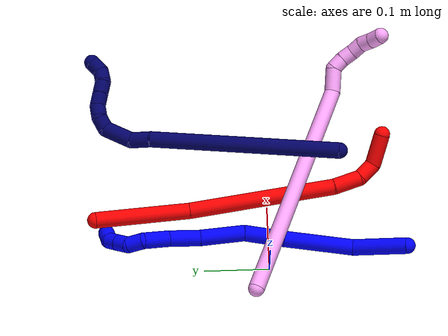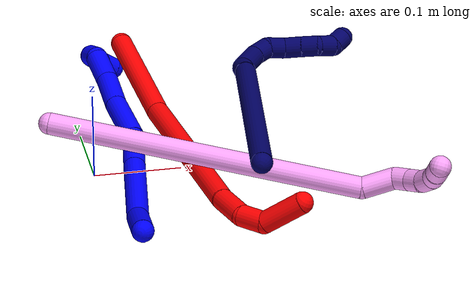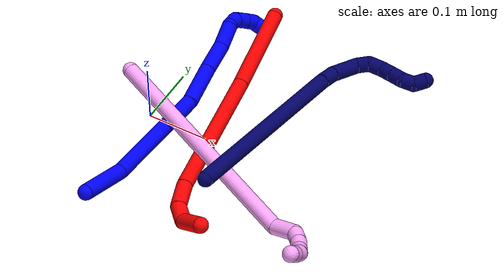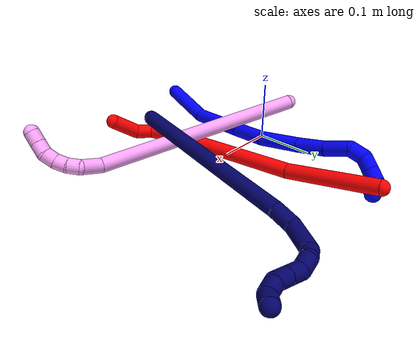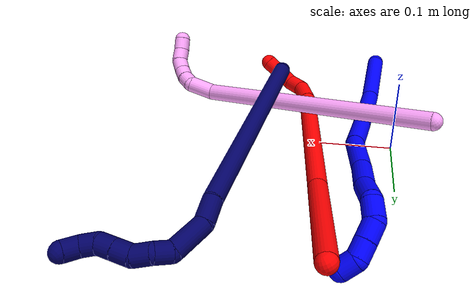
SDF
<sdf version="1.7">
 <world name="default">
  <model name="photoneo_s_sensor">
   <static>1</static>
   <pose>0 0 2 1.57079 1.57079 3.14159</pose>
   <link name="link">
    <inertial><mass>0.1</mass></inertial>
    <sensor name="sensor" type="depth">
     <update_rate>30</update_rate>
     <camera>
      <horizontal_fov>1.22</horizontal_fov>
      <image><width>1920</width><height>1200</height><format>B8G8R8</format></image>
      <clip><near>0.1</near><far>4</far></clip>
      <depth_camera><output>points</output></depth_camera>
     </camera>
     <plugin name="camera_plugin" filename="libgazebo_ros_depth_camera.so">
      <baseline>0.2</baseline>
      <alwaysOn>1</alwaysOn>
      <updateRate>0.0</updateRate>
      <cameraName>camera_ir</cameraName>
      <imageTopicName>/camera/color/image_raw</imageTopicName>
      <cameraInfoTopicName>/camera/color/camera_info</cameraInfoTopicName>
      <depthImageTopicName>/camera/depth/image_raw</depthImageTopicName>
      <depthImageCameraInfoTopicName>/camera/depth/camera_info</depthImageCameraInfoTopicName>
      <pointCloudTopicName>/camera/depth/points</pointCloudTopicName>
      <frameName>fr_optical</frameName>
      <pointCloudCutoff>0.1</pointCloudCutoff>
      <pointCloudCutoffMax>2.0</pointCloudCutoffMax>
      <distortionK1>0</distortionK1>
      <distortionK2>0</distortionK2>
      <distortionK3>0</distortionK3>
      <distortionT1>0</distortionT1>
      <distortionT2>0</distortionT2>
      <CxPrime>0</CxPrime>
      <Cx>0</Cx>
      <Cy>0</Cy>
      <focalLength>0</focalLength>
      <hackBaseline>0</hackBaseline>
     </plugin>
    </sensor>
   </link>
  </model>
  <model name="bin">
   <static>1</static>
   <link name="bottom">
    <collision name="collision-bottom">
     <pose>0 0 -0.01 0 -0 0</pose>
     <geometry><box><size>0.8 0.6 0.02</size></box></geometry>
     <surface>
      <friction><ode><mu>100</mu><mu2>100</mu2></ode></friction>
      <contact><collide_bitmask>65535</collide_bitmask></contact>
     </surface>
    </collision>
   </link>
   <link name="west_wall">
    <collision name="collision-west_wall">
     <pose>-0.41 0 0.1 0 -0 0</pose>
     <geometry><box><size>0.02 0.6 0.2</size></box></geometry>
     <surface>
      <friction><ode><mu>100</mu><mu2>100</mu2></ode></friction>
      <contact><collide_bitmask>65535</collide_bitmask></contact>
     </surface>
    </collision>
   </link>
   <link name="east_wall">
    <collision name="collision-east_wall">
     <pose>0.41 0 0.1 0 -0 0</pose>
     <geometry><box><size>0.02 0.6 0.2</size></box></geometry>
     <surface>
      <friction><ode><mu>100</mu><mu2>100</mu2></ode></friction>
      <contact><collide_bitmask>65535</collide_bitmask></contact>
     </surface>
    </collision>
   </link>
   <link name="south_wall">
    <collision name="collision-south_wall">
     <pose>0 -0.31 0.1 0 -0 0</pose>
     <geometry><box><size>0.8 0.02 0.2</size></box></geometry>
     <surface>
      <friction><ode><mu>100</mu><mu2>100</mu2></ode></friction>
      <contact><collide_bitmask>65535</collide_bitmask></contact>
     </surface>
    </collision>
   </link>
   <link name="north_wall">
    <collision name="collision-north_wall">
     <pose>0 0.31 0.1 0 -0 0</pose>
     <geometry><box><size>0.8 0.02 0.2</size></box></geometry>
     <surface>
      <friction><ode><mu>100</mu><mu2>100</mu2></ode></friction>
      <contact><collide_bitmask>65535</collide_bitmask></contact>
     </surface>
    </collision>
   </link>
  </model>
  <model name="1">
   <static>0</static>
   <link name="1">
    <collision name="collision-cylinder-e_1_1_4">
     <pose>0.015067 0.008634 0.039076 -0.217461 0.360082 -0.039732</pose>
     <geometry><cylinder><radius>0.0125</radius><length>0.085523</length></cylinder></geometry>
     <surface>
      <friction><ode><mu>1.16</mu><mu2>1.16</mu2><slip1>0</slip1><slip2>0</slip2></ode></friction>
      <contact><ode><kp>1e+06</kp><kd>1</kd><max_vel>0</max_vel><min_depth>0.001</min_depth></ode></contact>
     </surface>
    </collision>
    <visual name="visual-cylinder-e_1_1_4">
     <pose>0.015067 0.008634 0.039076 -0.217461 0.360082 -0.039732</pose>
     <geometry><cylinder><radius>0.0125</radius><length>0.085523</length></cylinder></geometry>
     <material><ambient>0 0 1 1</ambient></material>
    </visual>
    <collision name="collision-cylinder-e_2_4_5">
     <pose>0.031209 0.039904 0.126933 -0.434463 0.01999 -0.004412</pose>
     <geometry><cylinder><radius>0.0125</radius><length>0.107573</length></cylinder></geometry>
     <surface>
      <friction><ode><mu>1.16</mu><mu2>1.16</mu2><slip1>0</slip1><slip2>0</slip2></ode></friction>
      <contact><ode><kp>1e+06</kp><kd>1</kd><max_vel>0</max_vel><min_depth>0.001</min_depth></ode></contact>
     </surface>
    </collision>
    <visual name="visual-cylinder-e_2_4_5">
     <pose>0.031209 0.039904 0.126933 -0.434463 0.01999 -0.004412</pose>
     <geometry><cylinder><radius>0.0125</radius><length>0.107573</length></cylinder></geometry>
     <material><ambient>0 0 1 1</ambient></material>
    </visual>
    <collision name="collision-cylinder-e_3_5_6">
     <pose>0.031936 0.075749 0.203781 -0.439862 -0.011226 0.00251</pose>
     <geometry><cylinder><radius>0.0125</radius><length>0.062047</length></cylinder></geometry>
     <surface>
      <friction><ode><mu>1.16</mu><mu2>1.16</mu2><slip1>0</slip1><slip2>0</slip2></ode></friction>
      <contact><ode><kp>1e+06</kp><kd>1</kd><max_vel>0</max_vel><min_depth>0.001</min_depth></ode></contact>
     </surface>
    </collision>
    <visual name="visual-cylinder-e_3_5_6">
     <pose>0.031936 0.075749 0.203781 -0.439862 -0.011226 0.00251</pose>
     <geometry><cylinder><radius>0.0125</radius><length>0.062047</length></cylinder></geometry>
     <material><ambient>0 0 1 1</ambient></material>
    </visual>
    <collision name="collision-cylinder-e_4_6_7">
     <pose>0.036293 0.110125 0.258727 -0.667091 0.136685 -0.047425</pose>
     <geometry><cylinder><radius>0.0125</radius><length>0.069066</length></cylinder></geometry>
     <surface>
      <friction><ode><mu>1.16</mu><mu2>1.16</mu2><slip1>0</slip1><slip2>0</slip2></ode></friction>
      <contact><ode><kp>1e+06</kp><kd>1</kd><max_vel>0</max_vel><min_depth>0.001</min_depth></ode></contact>
     </surface>
    </collision>
    <visual name="visual-cylinder-e_4_6_7">
     <pose>0.036293 0.110125 0.258727 -0.667091 0.136685 -0.047425</pose>
     <geometry><cylinder><radius>0.0125</radius><length>0.069066</length></cylinder></geometry>
     <material><ambient>0 0 1 1</ambient></material>
    </visual>
    <collision name="collision-cylinder-e_5_7_8">
     <pose>0.041806 0.145925 0.30478 -0.651869 0.033441 -0.011304</pose>
     <geometry><cylinder><radius>0.0125</radius><length>0.048271</length></cylinder></geometry>
     <surface>
      <friction><ode><mu>1.16</mu><mu2>1.16</mu2><slip1>0</slip1><slip2>0</slip2></ode></friction>
      <contact><ode><kp>1e+06</kp><kd>1</kd><max_vel>0</max_vel><min_depth>0.001</min_depth></ode></contact>
     </surface>
    </collision>
    <visual name="visual-cylinder-e_5_7_8">
     <pose>0.041806 0.145925 0.30478 -0.651869 0.033441 -0.011304</pose>
     <geometry><cylinder><radius>0.0125</radius><length>0.048271</length></cylinder></geometry>
     <material><ambient>0 0 1 1</ambient></material>
    </visual>
    <collision name="collision-cylinder-e_6_8_9">
     <pose>0.042638 0.174915 0.338025 -0.795486 0.001258 -0.000529</pose>
     <geometry><cylinder><radius>0.0125</radius><length>0.040201</length></cylinder></geometry>
     <surface>
      <friction><ode><mu>1.16</mu><mu2>1.16</mu2><slip1>0</slip1><slip2>0</slip2></ode></friction>
      <contact><ode><kp>1e+06</kp><kd>1</kd><max_vel>0</max_vel><min_depth>0.001</min_depth></ode></contact>
     </surface>
    </collision>
    <visual name="visual-cylinder-e_6_8_9">
     <pose>0.042638 0.174915 0.338025 -0.795486 0.001258 -0.000529</pose>
     <geometry><cylinder><radius>0.0125</radius><length>0.040201</length></cylinder></geometry>
     <material><ambient>0 0 1 1</ambient></material>
    </visual>
    <collision name="collision-cylinder-e_7_9_10">
     <pose>0.048729 0.193509 0.362 -0.404274 0.512714 -0.107334</pose>
     <geometry><cylinder><radius>0.0125</radius><length>0.02473</length></cylinder></geometry>
     <surface>
      <friction><ode><mu>1.16</mu><mu2>1.16</mu2><slip1>0</slip1><slip2>0</slip2></ode></friction>
      <contact><ode><kp>1e+06</kp><kd>1</kd><max_vel>0</max_vel><min_depth>0.001</min_depth></ode></contact>
     </surface>
    </collision>
    <visual name="visual-cylinder-e_7_9_10">
     <pose>0.048729 0.193509 0.362 -0.404274 0.512714 -0.107334</pose>
     <geometry><cylinder><radius>0.0125</radius><length>0.02473</length></cylinder></geometry>
     <material><ambient>0 0 1 1</ambient></material>
    </visual>
    <collision name="collision-cylinder-e_8_10_11">
     <pose>0.058828 0.195399 0.381961 0.229504 0.372406 0.043419</pose>
     <geometry><cylinder><radius>0.0125</radius><length>0.02217</length></cylinder></geometry>
     <surface>
      <friction><ode><mu>1.16</mu><mu2>1.16</mu2><slip1>0</slip1><slip2>0</slip2></ode></friction>
      <contact><ode><kp>1e+06</kp><kd>1</kd><max_vel>0</max_vel><min_depth>0.001</min_depth></ode></contact>
     </surface>
    </collision>
    <visual name="visual-cylinder-e_8_10_11">
     <pose>0.058828 0.195399 0.381961 0.229504 0.372406 0.043419</pose>
     <geometry><cylinder><radius>0.0125</radius><length>0.02217</length></cylinder></geometry>
     <material><ambient>0 0 1 1</ambient></material>
    </visual>
    <collision name="collision-cylinder-e_9_11_12">
     <pose>0.066553 0.190649 0.401105 0.258285 0.374198 0.04916</pose>
     <geometry><cylinder><radius>0.0125</radius><length>0.0202</length></cylinder></geometry>
     <surface>
      <friction><ode><mu>1.16</mu><mu2>1.16</mu2><slip1>0</slip1><slip2>0</slip2></ode></friction>
      <contact><ode><kp>1e+06</kp><kd>1</kd><max_vel>0</max_vel><min_depth>0.001</min_depth></ode></contact>
     </surface>
    </collision>
    <visual name="visual-cylinder-e_9_11_12">
     <pose>0.066553 0.190649 0.401105 0.258285 0.374198 0.04916</pose>
     <geometry><cylinder><radius>0.0125</radius><length>0.0202</length></cylinder></geometry>
     <material><ambient>0 0 1 1</ambient></material>
    </visual>
    <collision name="collision-cylinder-e_10_12_2">
     <pose>0.070958 0.1807 0.416882 0.845675 0.070661 0.031807</pose>
     <geometry><cylinder><radius>0.0125</radius><length>0.020219</length></cylinder></geometry>
     <surface>
      <friction><ode><mu>1.16</mu><mu2>1.16</mu2><slip1>0</slip1><slip2>0</slip2></ode></friction>
      <contact><ode><kp>1e+06</kp><kd>1</kd><max_vel>0</max_vel><min_depth>0.001</min_depth></ode></contact>
     </surface>
    </collision>
    <visual name="visual-cylinder-e_10_12_2">
     <pose>0.070958 0.1807 0.416882 0.845675 0.070661 0.031807</pose>
     <geometry><cylinder><radius>0.0125</radius><length>0.020219</length></cylinder></geometry>
     <material><ambient>0 0 1 1</ambient></material>
    </visual>
    <collision name="collision-sphere-2">
     <pose>0.071672 0.173153 0.42357 0 -0 0</pose>
     <geometry><sphere><radius>0.0125</radius></sphere></geometry>
     <surface>
      <friction><ode><mu>1.16</mu><mu2>1.16</mu2><slip1>0</slip1><slip2>0</slip2></ode></friction>
      <contact><ode><kp>1e+06</kp><kd>1</kd><max_vel>0</max_vel><min_depth>0.001</min_depth></ode></contact>
     </surface>
    </collision>
    <visual name="visual-sphere-2">
     <pose>0.071672 0.173153 0.42357 0 -0 0</pose>
     <geometry><sphere><radius>0.0125</radius></sphere></geometry>
     <material><ambient>0 0 1 1</ambient></material>
    </visual>
    <collision name="collision-sphere-12">
     <pose>0.070245 0.188247 0.410194 0 -0 0</pose>
     <geometry><sphere><radius>0.0125</radius></sphere></geometry>
     <surface>
      <friction><ode><mu>1.16</mu><mu2>1.16</mu2><slip1>0</slip1><slip2>0</slip2></ode></friction>
      <contact><ode><kp>1e+06</kp><kd>1</kd><max_vel>0</max_vel><min_depth>0.001</min_depth></ode></contact>
     </surface>
    </collision>
    <visual name="visual-sphere-12">
     <pose>0.070245 0.188247 0.410194 0 -0 0</pose>
     <geometry><sphere><radius>0.0125</radius></sphere></geometry>
     <material><ambient>0 0 1 1</ambient></material>
    </visual>
    <collision name="collision-sphere-11">
     <pose>0.062861 0.19305 0.392016 0 -0 0</pose>
     <geometry><sphere><radius>0.0125</radius></sphere></geometry>
     <surface>
      <friction><ode><mu>1.16</mu><mu2>1.16</mu2><slip1>0</slip1><slip2>0</slip2></ode></friction>
      <contact><ode><kp>1e+06</kp><kd>1</kd><max_vel>0</max_vel><min_depth>0.001</min_depth></ode></contact>
     </surface>
    </collision>
    <visual name="visual-sphere-11">
     <pose>0.062861 0.19305 0.392016 0 -0 0</pose>
     <geometry><sphere><radius>0.0125</radius></sphere></geometry>
     <material><ambient>0 0 1 1</ambient></material>
    </visual>
    <collision name="collision-sphere-10">
     <pose>0.054794 0.197748 0.371907 0 -0 0</pose>
     <geometry><sphere><radius>0.0125</radius></sphere></geometry>
     <surface>
      <friction><ode><mu>1.16</mu><mu2>1.16</mu2><slip1>0</slip1><slip2>0</slip2></ode></friction>
      <contact><ode><kp>1e+06</kp><kd>1</kd><max_vel>0</max_vel><min_depth>0.001</min_depth></ode></contact>
     </surface>
    </collision>
    <visual name="visual-sphere-10">
     <pose>0.054794 0.197748 0.371907 0 -0 0</pose>
     <geometry><sphere><radius>0.0125</radius></sphere></geometry>
     <material><ambient>0 0 1 1</ambient></material>
    </visual>
    <collision name="collision-sphere-9">
     <pose>0.042663 0.189271 0.352094 0 -0 0</pose>
     <geometry><sphere><radius>0.0125</radius></sphere></geometry>
     <surface>
      <friction><ode><mu>1.16</mu><mu2>1.16</mu2><slip1>0</slip1><slip2>0</slip2></ode></friction>
      <contact><ode><kp>1e+06</kp><kd>1</kd><max_vel>0</max_vel><min_depth>0.001</min_depth></ode></contact>
     </surface>
    </collision>
    <visual name="visual-sphere-9">
     <pose>0.042663 0.189271 0.352094 0 -0 0</pose>
     <geometry><sphere><radius>0.0125</radius></sphere></geometry>
     <material><ambient>0 0 1 1</ambient></material>
    </visual>
    <collision name="collision-sphere-4">
     <pose>0.030134 0.017268 0.078153 0 -0 0</pose>
     <geometry><sphere><radius>0.0125</radius></sphere></geometry>
     <surface>
      <friction><ode><mu>1.16</mu><mu2>1.16</mu2><slip1>0</slip1><slip2>0</slip2></ode></friction>
      <contact><ode><kp>1e+06</kp><kd>1</kd><max_vel>0</max_vel><min_depth>0.001</min_depth></ode></contact>
     </surface>
    </collision>
    <visual name="visual-sphere-4">
     <pose>0.030134 0.017268 0.078153 0 -0 0</pose>
     <geometry><sphere><radius>0.0125</radius></sphere></geometry>
     <material><ambient>0 0 1 1</ambient></material>
    </visual>
    <collision name="collision-sphere-1">
     <geometry><sphere><radius>0.0125</radius></sphere></geometry>
     <surface>
      <friction><ode><mu>1.16</mu><mu2>1.16</mu2><slip1>0</slip1><slip2>0</slip2></ode></friction>
      <contact><ode><kp>1e+06</kp><kd>1</kd><max_vel>0</max_vel><min_depth>0.001</min_depth></ode></contact>
     </surface>
    </collision>
    <visual name="visual-sphere-1">
     <geometry><sphere><radius>0.0125</radius></sphere></geometry>
     <material><ambient>0 0 1 1</ambient></material>
    </visual>
    <collision name="collision-sphere-8">
     <pose>0.042613 0.160559 0.323956 0 -0 0</pose>
     <geometry><sphere><radius>0.0125</radius></sphere></geometry>
     <surface>
      <friction><ode><mu>1.16</mu><mu2>1.16</mu2><slip1>0</slip1><slip2>0</slip2></ode></friction>
      <contact><ode><kp>1e+06</kp><kd>1</kd><max_vel>0</max_vel><min_depth>0.001</min_depth></ode></contact>
     </surface>
    </collision>
    <visual name="visual-sphere-8">
     <pose>0.042613 0.160559 0.323956 0 -0 0</pose>
     <geometry><sphere><radius>0.0125</radius></sphere></geometry>
     <material><ambient>0 0 1 1</ambient></material>
    </visual>
    <collision name="collision-sphere-5">
     <pose>0.032284 0.062539 0.175713 0 -0 0</pose>
     <geometry><sphere><radius>0.0125</radius></sphere></geometry>
     <surface>
      <friction><ode><mu>1.16</mu><mu2>1.16</mu2><slip1>0</slip1><slip2>0</slip2></ode></friction>
      <contact><ode><kp>1e+06</kp><kd>1</kd><max_vel>0</max_vel><min_depth>0.001</min_depth></ode></contact>
     </surface>
    </collision>
    <visual name="visual-sphere-5">
     <pose>0.032284 0.062539 0.175713 0 -0 0</pose>
     <geometry><sphere><radius>0.0125</radius></sphere></geometry>
     <material><ambient>0 0 1 1</ambient></material>
    </visual>
    <collision name="collision-sphere-6">
     <pose>0.031588 0.088958 0.23185 0 -0 0</pose>
     <geometry><sphere><radius>0.0125</radius></sphere></geometry>
     <surface>
      <friction><ode><mu>1.16</mu><mu2>1.16</mu2><slip1>0</slip1><slip2>0</slip2></ode></friction>
      <contact><ode><kp>1e+06</kp><kd>1</kd><max_vel>0</max_vel><min_depth>0.001</min_depth></ode></contact>
     </surface>
    </collision>
    <visual name="visual-sphere-6">
     <pose>0.031588 0.088958 0.23185 0 -0 0</pose>
     <geometry><sphere><radius>0.0125</radius></sphere></geometry>
     <material><ambient>0 0 1 1</ambient></material>
    </visual>
    <collision name="collision-sphere-7">
     <pose>0.040999 0.131291 0.285604 0 -0 0</pose>
     <geometry><sphere><radius>0.0125</radius></sphere></geometry>
     <surface>
      <friction><ode><mu>1.16</mu><mu2>1.16</mu2><slip1>0</slip1><slip2>0</slip2></ode></friction>
      <contact><ode><kp>1e+06</kp><kd>1</kd><max_vel>0</max_vel><min_depth>0.001</min_depth></ode></contact>
     </surface>
    </collision>
    <visual name="visual-sphere-7">
     <pose>0.040999 0.131291 0.285604 0 -0 0</pose>
     <geometry><sphere><radius>0.0125</radius></sphere></geometry>
     <material><ambient>0 0 1 1</ambient></material>
    </visual>
    <inertial>
     <pose>0.036309 0.096069 0.219525 0 -0 0</pose>
     <mass>0.5</mass>
     <inertia>
      <ixx>0.000238</ixx>
      <ixy>0</ixy>
      <ixz>0</ixz>
      <iyy>0.000226</iyy>
      <iyz>0</iyz>
      <izz>-9.1e-05</izz>
     </inertia>
    </inertial>
   </link>
   <pose>0.019928 -0.210885 0.038469 1.84617 0.933383 2.8656</pose>
  </model>
  <model name="2">
   <static>0</static>
   <link name="2">
    <collision name="collision-cylinder-e_1_1_4">
     <pose>0.048579 -0.054043 -0.01039 1.76073 0.72319 0.858748</pose>
     <geometry><cylinder><radius>0.0125</radius><length>0.146814</length></cylinder></geometry>
     <surface>
      <friction><ode><mu>1.16</mu><mu2>1.16</mu2><slip1>0</slip1><slip2>0</slip2></ode></friction>
      <contact><ode><kp>1e+06</kp><kd>1</kd><max_vel>0</max_vel><min_depth>0.001</min_depth></ode></contact>
     </surface>
    </collision>
    <visual name="visual-cylinder-e_1_1_4">
     <pose>0.048579 -0.054043 -0.01039 1.76073 0.72319 0.858748</pose>
     <geometry><cylinder><radius>0.0125</radius><length>0.146814</length></cylinder></geometry>
     <material><ambient>1 0 0 1</ambient></material>
    </visual>
    <collision name="collision-cylinder-e_2_4_5">
     <pose>0.174796 -0.185826 -0.052889 1.96249 0.745404 1.05789</pose>
     <geometry><cylinder><radius>0.0125</radius><length>0.228929</length></cylinder></geometry>
     <surface>
      <friction><ode><mu>1.16</mu><mu2>1.16</mu2><slip1>0</slip1><slip2>0</slip2></ode></friction>
      <contact><ode><kp>1e+06</kp><kd>1</kd><max_vel>0</max_vel><min_depth>0.001</min_depth></ode></contact>
     </surface>
    </collision>
    <visual name="visual-cylinder-e_2_4_5">
     <pose>0.174796 -0.185826 -0.052889 1.96249 0.745404 1.05789</pose>
     <geometry><cylinder><radius>0.0125</radius><length>0.228929</length></cylinder></geometry>
     <material><ambient>1 0 0 1</ambient></material>
    </visual>
    <collision name="collision-cylinder-e_3_5_6">
     <pose>0.264066 -0.280169 -0.092404 1.99032 0.569236 0.847078</pose>
     <geometry><cylinder><radius>0.0125</radius><length>0.043165</length></cylinder></geometry>
     <surface>
      <friction><ode><mu>1.16</mu><mu2>1.16</mu2><slip1>0</slip1><slip2>0</slip2></ode></friction>
      <contact><ode><kp>1e+06</kp><kd>1</kd><max_vel>0</max_vel><min_depth>0.001</min_depth></ode></contact>
     </surface>
    </collision>
    <visual name="visual-cylinder-e_3_5_6">
     <pose>0.264066 -0.280169 -0.092404 1.99032 0.569236 0.847078</pose>
     <geometry><cylinder><radius>0.0125</radius><length>0.043165</length></cylinder></geometry>
     <material><ambient>1 0 0 1</ambient></material>
    </visual>
    <collision name="collision-cylinder-e_4_6_7">
     <pose>0.277497 -0.309853 -0.107132 2.08112 0.119362 0.20315</pose>
     <geometry><cylinder><radius>0.0125</radius><length>0.030199</length></cylinder></geometry>
     <surface>
      <friction><ode><mu>1.16</mu><mu2>1.16</mu2><slip1>0</slip1><slip2>0</slip2></ode></friction>
      <contact><ode><kp>1e+06</kp><kd>1</kd><max_vel>0</max_vel><min_depth>0.001</min_depth></ode></contact>
     </surface>
    </collision>
    <visual name="visual-cylinder-e_4_6_7">
     <pose>0.277497 -0.309853 -0.107132 2.08112 0.119362 0.20315</pose>
     <geometry><cylinder><radius>0.0125</radius><length>0.030199</length></cylinder></geometry>
     <material><ambient>1 0 0 1</ambient></material>
    </visual>
    <collision name="collision-cylinder-e_5_7_2">
     <pose>0.274806 -0.332598 -0.137564 2.74556 -0.177355 -0.834242</pose>
     <geometry><cylinder><radius>0.0125</radius><length>0.050894</length></cylinder></geometry>
     <surface>
      <friction><ode><mu>1.16</mu><mu2>1.16</mu2><slip1>0</slip1><slip2>0</slip2></ode></friction>
      <contact><ode><kp>1e+06</kp><kd>1</kd><max_vel>0</max_vel><min_depth>0.001</min_depth></ode></contact>
     </surface>
    </collision>
    <visual name="visual-cylinder-e_5_7_2">
     <pose>0.274806 -0.332598 -0.137564 2.74556 -0.177355 -0.834242</pose>
     <geometry><cylinder><radius>0.0125</radius><length>0.050894</length></cylinder></geometry>
     <material><ambient>1 0 0 1</ambient></material>
    </visual>
    <collision name="collision-sphere-2">
     <pose>0.270316 -0.34226 -0.160673 0 -0 0</pose>
     <geometry><sphere><radius>0.0125</radius></sphere></geometry>
     <surface>
      <friction><ode><mu>1.16</mu><mu2>1.16</mu2><slip1>0</slip1><slip2>0</slip2></ode></friction>
      <contact><ode><kp>1e+06</kp><kd>1</kd><max_vel>0</max_vel><min_depth>0.001</min_depth></ode></contact>
     </surface>
    </collision>
    <visual name="visual-sphere-2">
     <pose>0.270316 -0.34226 -0.160673 0 -0 0</pose>
     <geometry><sphere><radius>0.0125</radius></sphere></geometry>
     <material><ambient>1 0 0 1</ambient></material>
    </visual>
    <collision name="collision-sphere-7">
     <pose>0.279295 -0.322935 -0.114455 0 -0 0</pose>
     <geometry><sphere><radius>0.0125</radius></sphere></geometry>
     <surface>
      <friction><ode><mu>1.16</mu><mu2>1.16</mu2><slip1>0</slip1><slip2>0</slip2></ode></friction>
      <contact><ode><kp>1e+06</kp><kd>1</kd><max_vel>0</max_vel><min_depth>0.001</min_depth></ode></contact>
     </surface>
    </collision>
    <visual name="visual-sphere-7">
     <pose>0.279295 -0.322935 -0.114455 0 -0 0</pose>
     <geometry><sphere><radius>0.0125</radius></sphere></geometry>
     <material><ambient>1 0 0 1</ambient></material>
    </visual>
    <collision name="collision-sphere-6">
     <pose>0.275699 -0.296772 -0.099809 0 -0 0</pose>
     <geometry><sphere><radius>0.0125</radius></sphere></geometry>
     <surface>
      <friction><ode><mu>1.16</mu><mu2>1.16</mu2><slip1>0</slip1><slip2>0</slip2></ode></friction>
      <contact><ode><kp>1e+06</kp><kd>1</kd><max_vel>0</max_vel><min_depth>0.001</min_depth></ode></contact>
     </surface>
    </collision>
    <visual name="visual-sphere-6">
     <pose>0.275699 -0.296772 -0.099809 0 -0 0</pose>
     <geometry><sphere><radius>0.0125</radius></sphere></geometry>
     <material><ambient>1 0 0 1</ambient></material>
    </visual>
    <collision name="collision-sphere-5">
     <pose>0.252434 -0.263566 -0.084999 0 -0 0</pose>
     <geometry><sphere><radius>0.0125</radius></sphere></geometry>
     <surface>
      <friction><ode><mu>1.16</mu><mu2>1.16</mu2><slip1>0</slip1><slip2>0</slip2></ode></friction>
      <contact><ode><kp>1e+06</kp><kd>1</kd><max_vel>0</max_vel><min_depth>0.001</min_depth></ode></contact>
     </surface>
    </collision>
    <visual name="visual-sphere-5">
     <pose>0.252434 -0.263566 -0.084999 0 -0 0</pose>
     <geometry><sphere><radius>0.0125</radius></sphere></geometry>
     <material><ambient>1 0 0 1</ambient></material>
    </visual>
    <collision name="collision-sphere-1">
     <geometry><sphere><radius>0.0125</radius></sphere></geometry>
     <surface>
      <friction><ode><mu>1.16</mu><mu2>1.16</mu2><slip1>0</slip1><slip2>0</slip2></ode></friction>
      <contact><ode><kp>1e+06</kp><kd>1</kd><max_vel>0</max_vel><min_depth>0.001</min_depth></ode></contact>
     </surface>
    </collision>
    <visual name="visual-sphere-1">
     <geometry><sphere><radius>0.0125</radius></sphere></geometry>
     <material><ambient>1 0 0 1</ambient></material>
    </visual>
    <collision name="collision-sphere-4">
     <pose>0.097158 -0.108087 -0.020779 0 -0 0</pose>
     <geometry><sphere><radius>0.0125</radius></sphere></geometry>
     <surface>
      <friction><ode><mu>1.16</mu><mu2>1.16</mu2><slip1>0</slip1><slip2>0</slip2></ode></friction>
      <contact><ode><kp>1e+06</kp><kd>1</kd><max_vel>0</max_vel><min_depth>0.001</min_depth></ode></contact>
     </surface>
    </collision>
    <visual name="visual-sphere-4">
     <pose>0.097158 -0.108087 -0.020779 0 -0 0</pose>
     <geometry><sphere><radius>0.0125</radius></sphere></geometry>
     <material><ambient>1 0 0 1</ambient></material>
    </visual>
    <inertial>
     <pose>0.161825 -0.177706 -0.055716 0 -0 0</pose>
     <mass>0.5</mass>
     <inertia><ixx>0.001329</ixx><ixy>0</ixy><ixz>0</ixz><iyy>0.001222</iyy><iyz>0</iyz><izz>2e-05</izz></inertia>
    </inertial>
   </link>
   <pose>0.076648 0.264731 0.035551 2.61171 -0.141455 -2.24173</pose>
  </model>
  <model name="4">
   <static>0</static>
   <link name="4">
    <collision name="collision-cylinder-e_1_1_4">
     <pose>0.178906 -0.021135 0.014992 0.953827 1.42696 0.841127</pose>
     <geometry><cylinder><radius>0.0125</radius><length>0.361545</length></cylinder></geometry>
     <surface>
      <friction><ode><mu>1.16</mu><mu2>1.16</mu2><slip1>0</slip1><slip2>0</slip2></ode></friction>
      <contact><ode><kp>1e+06</kp><kd>1</kd><max_vel>0</max_vel><min_depth>0.001</min_depth></ode></contact>
     </surface>
    </collision>
    <visual name="visual-cylinder-e_1_1_4">
     <pose>0.178906 -0.021135 0.014992 0.953827 1.42696 0.841127</pose>
     <geometry><cylinder><radius>0.0125</radius><length>0.361545</length></cylinder></geometry>
     <material><ambient>1 0.65098 0.996078 1</ambient></material>
    </visual>
    <collision name="collision-cylinder-e_2_4_5">
     <pose>0.373649 -0.043837 0.040505 0.147835 0.979373 0.078897</pose>
     <geometry><cylinder><radius>0.0125</radius><length>0.038156</length></cylinder></geometry>
     <surface>
      <friction><ode><mu>1.16</mu><mu2>1.16</mu2><slip1>0</slip1><slip2>0</slip2></ode></friction>
      <contact><ode><kp>1e+06</kp><kd>1</kd><max_vel>0</max_vel><min_depth>0.001</min_depth></ode></contact>
     </surface>
    </collision>
    <visual name="visual-cylinder-e_2_4_5">
     <pose>0.373649 -0.043837 0.040505 0.147835 0.979373 0.078897</pose>
     <geometry><cylinder><radius>0.0125</radius><length>0.038156</length></cylinder></geometry>
     <material><ambient>1 0.65098 0.996078 1</ambient></material>
    </visual>
    <collision name="collision-cylinder-e_3_5_6">
     <pose>0.397597 -0.051403 0.052031 1.40478 0.927271 0.800654</pose>
     <geometry><cylinder><radius>0.0125</radius><length>0.020278</length></cylinder></geometry>
     <surface>
      <friction><ode><mu>1.16</mu><mu2>1.16</mu2><slip1>0</slip1><slip2>0</slip2></ode></friction>
      <contact><ode><kp>1e+06</kp><kd>1</kd><max_vel>0</max_vel><min_depth>0.001</min_depth></ode></contact>
     </surface>
    </collision>
    <visual name="visual-cylinder-e_3_5_6">
     <pose>0.397597 -0.051403 0.052031 1.40478 0.927271 0.800654</pose>
     <geometry><cylinder><radius>0.0125</radius><length>0.020278</length></cylinder></geometry>
     <material><ambient>1 0.65098 0.996078 1</ambient></material>
    </visual>
    <collision name="collision-cylinder-e_4_6_7">
     <pose>0.412021 -0.065138 0.053639 1.493 0.68305 0.635371</pose>
     <geometry><cylinder><radius>0.0125</radius><length>0.020003</length></cylinder></geometry>
     <surface>
      <friction><ode><mu>1.16</mu><mu2>1.16</mu2><slip1>0</slip1><slip2>0</slip2></ode></friction>
      <contact><ode><kp>1e+06</kp><kd>1</kd><max_vel>0</max_vel><min_depth>0.001</min_depth></ode></contact>
     </surface>
    </collision>
    <visual name="visual-cylinder-e_4_6_7">
     <pose>0.412021 -0.065138 0.053639 1.493 0.68305 0.635371</pose>
     <geometry><cylinder><radius>0.0125</radius><length>0.020003</length></cylinder></geometry>
     <material><ambient>1 0.65098 0.996078 1</ambient></material>
    </visual>
    <collision name="collision-cylinder-e_5_7_8">
     <pose>0.422953 -0.081192 0.057328 1.21561 0.479948 0.337208</pose>
     <geometry><cylinder><radius>0.0125</radius><length>0.020007</length></cylinder></geometry>
     <surface>
      <friction><ode><mu>1.16</mu><mu2>1.16</mu2><slip1>0</slip1><slip2>0</slip2></ode></friction>
      <contact><ode><kp>1e+06</kp><kd>1</kd><max_vel>0</max_vel><min_depth>0.001</min_depth></ode></contact>
     </surface>
    </collision>
    <visual name="visual-cylinder-e_5_7_8">
     <pose>0.422953 -0.081192 0.057328 1.21561 0.479948 0.337208</pose>
     <geometry><cylinder><radius>0.0125</radius><length>0.020007</length></cylinder></geometry>
     <material><ambient>1 0.65098 0.996078 1</ambient></material>
    </visual>
    <collision name="collision-cylinder-e_6_8_9">
     <pose>0.428092 -0.099232 0.062707 1.33912 0.052061 0.041212</pose>
     <geometry><cylinder><radius>0.0125</radius><length>0.020002</length></cylinder></geometry>
     <surface>
      <friction><ode><mu>1.16</mu><mu2>1.16</mu2><slip1>0</slip1><slip2>0</slip2></ode></friction>
      <contact><ode><kp>1e+06</kp><kd>1</kd><max_vel>0</max_vel><min_depth>0.001</min_depth></ode></contact>
     </surface>
    </collision>
    <visual name="visual-cylinder-e_6_8_9">
     <pose>0.428092 -0.099232 0.062707 1.33912 0.052061 0.041212</pose>
     <geometry><cylinder><radius>0.0125</radius><length>0.020002</length></cylinder></geometry>
     <material><ambient>1 0.65098 0.996078 1</ambient></material>
    </visual>
    <collision name="collision-cylinder-e_7_9_2">
     <pose>0.429039 -0.11832 0.068487 1.21446 0.042618 0.029613</pose>
     <geometry><cylinder><radius>0.0125</radius><length>0.020008</length></cylinder></geometry>
     <surface>
      <friction><ode><mu>1.16</mu><mu2>1.16</mu2><slip1>0</slip1><slip2>0</slip2></ode></friction>
      <contact><ode><kp>1e+06</kp><kd>1</kd><max_vel>0</max_vel><min_depth>0.001</min_depth></ode></contact>
     </surface>
    </collision>
    <visual name="visual-cylinder-e_7_9_2">
     <pose>0.429039 -0.11832 0.068487 1.21446 0.042618 0.029613</pose>
     <geometry><cylinder><radius>0.0125</radius><length>0.020008</length></cylinder></geometry>
     <material><ambient>1 0.65098 0.996078 1</ambient></material>
    </visual>
    <collision name="collision-sphere-2">
     <pose>0.429465 -0.127687 0.071973 0 -0 0</pose>
     <geometry><sphere><radius>0.0125</radius></sphere></geometry>
     <surface>
      <friction><ode><mu>1.16</mu><mu2>1.16</mu2><slip1>0</slip1><slip2>0</slip2></ode></friction>
      <contact><ode><kp>1e+06</kp><kd>1</kd><max_vel>0</max_vel><min_depth>0.001</min_depth></ode></contact>
     </surface>
    </collision>
    <visual name="visual-sphere-2">
     <pose>0.429465 -0.127687 0.071973 0 -0 0</pose>
     <geometry><sphere><radius>0.0125</radius></sphere></geometry>
     <material><ambient>1 0.65098 0.996078 1</ambient></material>
    </visual>
    <collision name="collision-sphere-9">
     <pose>0.428613 -0.108953 0.065 0 -0 0</pose>
     <geometry><sphere><radius>0.0125</radius></sphere></geometry>
     <surface>
      <friction><ode><mu>1.16</mu><mu2>1.16</mu2><slip1>0</slip1><slip2>0</slip2></ode></friction>
      <contact><ode><kp>1e+06</kp><kd>1</kd><max_vel>0</max_vel><min_depth>0.001</min_depth></ode></contact>
     </surface>
    </collision>
    <visual name="visual-sphere-9">
     <pose>0.428613 -0.108953 0.065 0 -0 0</pose>
     <geometry><sphere><radius>0.0125</radius></sphere></geometry>
     <material><ambient>1 0.65098 0.996078 1</ambient></material>
    </visual>
    <collision name="collision-sphere-4">
     <pose>0.357811 -0.04227 0.029984 0 -0 0</pose>
     <geometry><sphere><radius>0.0125</radius></sphere></geometry>
     <surface>
      <friction><ode><mu>1.16</mu><mu2>1.16</mu2><slip1>0</slip1><slip2>0</slip2></ode></friction>
      <contact><ode><kp>1e+06</kp><kd>1</kd><max_vel>0</max_vel><min_depth>0.001</min_depth></ode></contact>
     </surface>
    </collision>
    <visual name="visual-sphere-4">
     <pose>0.357811 -0.04227 0.029984 0 -0 0</pose>
     <geometry><sphere><radius>0.0125</radius></sphere></geometry>
     <material><ambient>1 0.65098 0.996078 1</ambient></material>
    </visual>
    <collision name="collision-sphere-1">
     <geometry><sphere><radius>0.0125</radius></sphere></geometry>
     <surface>
      <friction><ode><mu>1.16</mu><mu2>1.16</mu2><slip1>0</slip1><slip2>0</slip2></ode></friction>
      <contact><ode><kp>1e+06</kp><kd>1</kd><max_vel>0</max_vel><min_depth>0.001</min_depth></ode></contact>
     </surface>
    </collision>
    <visual name="visual-sphere-1">
     <geometry><sphere><radius>0.0125</radius></sphere></geometry>
     <material><ambient>1 0.65098 0.996078 1</ambient></material>
    </visual>
    <collision name="collision-sphere-8">
     <pose>0.427572 -0.089511 0.060414 0 -0 0</pose>
     <geometry><sphere><radius>0.0125</radius></sphere></geometry>
     <surface>
      <friction><ode><mu>1.16</mu><mu2>1.16</mu2><slip1>0</slip1><slip2>0</slip2></ode></friction>
      <contact><ode><kp>1e+06</kp><kd>1</kd><max_vel>0</max_vel><min_depth>0.001</min_depth></ode></contact>
     </surface>
    </collision>
    <visual name="visual-sphere-8">
     <pose>0.427572 -0.089511 0.060414 0 -0 0</pose>
     <geometry><sphere><radius>0.0125</radius></sphere></geometry>
     <material><ambient>1 0.65098 0.996078 1</ambient></material>
    </visual>
    <collision name="collision-sphere-5">
     <pose>0.389486 -0.045403 0.051025 0 -0 0</pose>
     <geometry><sphere><radius>0.0125</radius></sphere></geometry>
     <surface>
      <friction><ode><mu>1.16</mu><mu2>1.16</mu2><slip1>0</slip1><slip2>0</slip2></ode></friction>
      <contact><ode><kp>1e+06</kp><kd>1</kd><max_vel>0</max_vel><min_depth>0.001</min_depth></ode></contact>
     </surface>
    </collision>
    <visual name="visual-sphere-5">
     <pose>0.389486 -0.045403 0.051025 0 -0 0</pose>
     <geometry><sphere><radius>0.0125</radius></sphere></geometry>
     <material><ambient>1 0.65098 0.996078 1</ambient></material>
    </visual>
    <collision name="collision-sphere-6">
     <pose>0.405708 -0.057403 0.053036 0 -0 0</pose>
     <geometry><sphere><radius>0.0125</radius></sphere></geometry>
     <surface>
      <friction><ode><mu>1.16</mu><mu2>1.16</mu2><slip1>0</slip1><slip2>0</slip2></ode></friction>
      <contact><ode><kp>1e+06</kp><kd>1</kd><max_vel>0</max_vel><min_depth>0.001</min_depth></ode></contact>
     </surface>
    </collision>
    <visual name="visual-sphere-6">
     <pose>0.405708 -0.057403 0.053036 0 -0 0</pose>
     <geometry><sphere><radius>0.0125</radius></sphere></geometry>
     <material><ambient>1 0.65098 0.996078 1</ambient></material>
    </visual>
    <collision name="collision-sphere-7">
     <pose>0.418334 -0.072872 0.054242 0 -0 0</pose>
     <geometry><sphere><radius>0.0125</radius></sphere></geometry>
     <surface>
      <friction><ode><mu>1.16</mu><mu2>1.16</mu2><slip1>0</slip1><slip2>0</slip2></ode></friction>
      <contact><ode><kp>1e+06</kp><kd>1</kd><max_vel>0</max_vel><min_depth>0.001</min_depth></ode></contact>
     </surface>
    </collision>
    <visual name="visual-sphere-7">
     <pose>0.418334 -0.072872 0.054242 0 -0 0</pose>
     <geometry><sphere><radius>0.0125</radius></sphere></geometry>
     <material><ambient>1 0.65098 0.996078 1</ambient></material>
    </visual>
    <inertial>
     <pose>0.241706 -0.035272 0.025731 0 -0 0</pose>
     <mass>0.5</mass>
     <inertia>
      <ixx>0.000845</ixx>
      <ixy>0</ixy>
      <ixz>0</ixz>
      <iyy>0.004326</iyy>
      <iyz>0</iyz>
      <izz>-0.003445</izz>
     </inertia>
    </inertial>
   </link>
   <pose>-0.046671 0.021659 0.060423 -0.550277 0.266627 -0.321233</pose>
  </model>
  <model name="7">
   <static>0</static>
   <link name="7">
    <collision name="collision-cylinder-e_1_1_4">
     <pose>0.006372 -0.034829 0.14429 0.23685 0.042905 0.005106</pose>
     <geometry><cylinder><radius>0.0125</radius><length>0.297142</length></cylinder></geometry>
     <surface>
      <friction><ode><mu>1.16</mu><mu2>1.16</mu2><slip1>0</slip1><slip2>0</slip2></ode></friction>
      <contact><ode><kp>1e+06</kp><kd>1</kd><max_vel>0</max_vel><min_depth>0.001</min_depth></ode></contact>
     </surface>
    </collision>
    <visual name="visual-cylinder-e_1_1_4">
     <pose>0.006372 -0.034829 0.14429 0.23685 0.042905 0.005106</pose>
     <geometry><cylinder><radius>0.0125</radius><length>0.297142</length></cylinder></geometry>
     <material><ambient>0.003922 0 0.403922 1</ambient></material>
    </visual>
    <collision name="collision-cylinder-e_2_4_5">
     <pose>0.011348 -0.07554 0.303565 0.374084 -0.086561 -0.016392</pose>
     <geometry><cylinder><radius>0.0125</radius><length>0.032316</length></cylinder></geometry>
     <surface>
      <friction><ode><mu>1.16</mu><mu2>1.16</mu2><slip1>0</slip1><slip2>0</slip2></ode></friction>
      <contact><ode><kp>1e+06</kp><kd>1</kd><max_vel>0</max_vel><min_depth>0.001</min_depth></ode></contact>
     </surface>
    </collision>
    <visual name="visual-cylinder-e_2_4_5">
     <pose>0.011348 -0.07554 0.303565 0.374084 -0.086561 -0.016392</pose>
     <geometry><cylinder><radius>0.0125</radius><length>0.032316</length></cylinder></geometry>
     <material><ambient>0.003922 0 0.403922 1</ambient></material>
    </visual>
    <collision name="collision-cylinder-e_3_5_6">
     <pose>0.006126 -0.079865 0.341623 -0.067379 -0.16391 0.005537</pose>
     <geometry><cylinder><radius>0.0125</radius><length>0.046881</length></cylinder></geometry>
     <surface>
      <friction><ode><mu>1.16</mu><mu2>1.16</mu2><slip1>0</slip1><slip2>0</slip2></ode></friction>
      <contact><ode><kp>1e+06</kp><kd>1</kd><max_vel>0</max_vel><min_depth>0.001</min_depth></ode></contact>
     </surface>
    </collision>
    <visual name="visual-cylinder-e_3_5_6">
     <pose>0.006126 -0.079865 0.341623 -0.067379 -0.16391 0.005537</pose>
     <geometry><cylinder><radius>0.0125</radius><length>0.046881</length></cylinder></geometry>
     <material><ambient>0.003922 0 0.403922 1</ambient></material>
    </visual>
    <collision name="collision-cylinder-e_4_6_7">
     <pose>0.000563 -0.071514 0.372079 -0.743914 -0.171501 0.067044</pose>
     <geometry><cylinder><radius>0.0125</radius><length>0.020366</length></cylinder></geometry>
     <surface>
      <friction><ode><mu>1.16</mu><mu2>1.16</mu2><slip1>0</slip1><slip2>0</slip2></ode></friction>
      <contact><ode><kp>1e+06</kp><kd>1</kd><max_vel>0</max_vel><min_depth>0.001</min_depth></ode></contact>
     </surface>
    </collision>
    <visual name="visual-cylinder-e_4_6_7">
     <pose>0.000563 -0.071514 0.372079 -0.743914 -0.171501 0.067044</pose>
     <geometry><cylinder><radius>0.0125</radius><length>0.020366</length></cylinder></geometry>
     <material><ambient>0.003922 0 0.403922 1</ambient></material>
    </visual>
    <collision name="collision-cylinder-e_5_7_8">
     <pose>-0.008001 -0.058156 0.384654 -0.901567 -0.684248 0.341393</pose>
     <geometry><cylinder><radius>0.0125</radius><length>0.021601</length></cylinder></geometry>
     <surface>
      <friction><ode><mu>1.16</mu><mu2>1.16</mu2><slip1>0</slip1><slip2>0</slip2></ode></friction>
      <contact><ode><kp>1e+06</kp><kd>1</kd><max_vel>0</max_vel><min_depth>0.001</min_depth></ode></contact>
     </surface>
    </collision>
    <visual name="visual-cylinder-e_5_7_8">
     <pose>-0.008001 -0.058156 0.384654 -0.901567 -0.684248 0.341393</pose>
     <geometry><cylinder><radius>0.0125</radius><length>0.021601</length></cylinder></geometry>
     <material><ambient>0.003922 0 0.403922 1</ambient></material>
    </visual>
    <collision name="collision-cylinder-e_6_8_9">
     <pose>-0.019912 -0.042237 0.391294 -1.41728 -0.492877 0.424739</pose>
     <geometry><cylinder><radius>0.0125</radius><length>0.021489</length></cylinder></geometry>
     <surface>
      <friction><ode><mu>1.16</mu><mu2>1.16</mu2><slip1>0</slip1><slip2>0</slip2></ode></friction>
      <contact><ode><kp>1e+06</kp><kd>1</kd><max_vel>0</max_vel><min_depth>0.001</min_depth></ode></contact>
     </surface>
    </collision>
    <visual name="visual-cylinder-e_6_8_9">
     <pose>-0.019912 -0.042237 0.391294 -1.41728 -0.492877 0.424739</pose>
     <geometry><cylinder><radius>0.0125</radius><length>0.021489</length></cylinder></geometry>
     <material><ambient>0.003922 0 0.403922 1</ambient></material>
    </visual>
    <collision name="collision-cylinder-e_7_9_10">
     <pose>-0.029931 -0.024177 0.394037 -1.42305 -0.511026 0.44305</pose>
     <geometry><cylinder><radius>0.0125</radius><length>0.020183</length></cylinder></geometry>
     <surface>
      <friction><ode><mu>1.16</mu><mu2>1.16</mu2><slip1>0</slip1><slip2>0</slip2></ode></friction>
      <contact><ode><kp>1e+06</kp><kd>1</kd><max_vel>0</max_vel><min_depth>0.001</min_depth></ode></contact>
     </surface>
    </collision>
    <visual name="visual-cylinder-e_7_9_10">
     <pose>-0.029931 -0.024177 0.394037 -1.42305 -0.511026 0.44305</pose>
     <geometry><cylinder><radius>0.0125</radius><length>0.020183</length></cylinder></geometry>
     <material><ambient>0.003922 0 0.403922 1</ambient></material>
    </visual>
    <collision name="collision-cylinder-e_8_10_11">
     <pose>-0.040909 -0.009408 0.40052 -0.863104 -0.648129 0.306938</pose>
     <geometry><cylinder><radius>0.0125</radius><length>0.020018</length></cylinder></geometry>
     <surface>
      <friction><ode><mu>1.16</mu><mu2>1.16</mu2><slip1>0</slip1><slip2>0</slip2></ode></friction>
      <contact><ode><kp>1e+06</kp><kd>1</kd><max_vel>0</max_vel><min_depth>0.001</min_depth></ode></contact>
     </surface>
    </collision>
    <visual name="visual-cylinder-e_8_10_11">
     <pose>-0.040909 -0.009408 0.40052 -0.863104 -0.648129 0.306938</pose>
     <geometry><cylinder><radius>0.0125</radius><length>0.020018</length></cylinder></geometry>
     <material><ambient>0.003922 0 0.403922 1</ambient></material>
    </visual>
    <collision name="collision-cylinder-e_9_11_2">
     <pose>-0.047934 0.001157 0.414586 -0.469201 -0.098437 0.023544</pose>
     <geometry><cylinder><radius>0.0125</radius><length>0.020005</length></cylinder></geometry>
     <surface>
      <friction><ode><mu>1.16</mu><mu2>1.16</mu2><slip1>0</slip1><slip2>0</slip2></ode></friction>
      <contact><ode><kp>1e+06</kp><kd>1</kd><max_vel>0</max_vel><min_depth>0.001</min_depth></ode></contact>
     </surface>
    </collision>
    <visual name="visual-cylinder-e_9_11_2">
     <pose>-0.047934 0.001157 0.414586 -0.469201 -0.098437 0.023544</pose>
     <geometry><cylinder><radius>0.0125</radius><length>0.020005</length></cylinder></geometry>
     <material><ambient>0.003922 0 0.403922 1</ambient></material>
    </visual>
    <collision name="collision-sphere-2">
     <pose>-0.048917 0.005658 0.423464 0 -0 0</pose>
     <geometry><sphere><radius>0.0125</radius></sphere></geometry>
     <surface>
      <friction><ode><mu>1.16</mu><mu2>1.16</mu2><slip1>0</slip1><slip2>0</slip2></ode></friction>
      <contact><ode><kp>1e+06</kp><kd>1</kd><max_vel>0</max_vel><min_depth>0.001</min_depth></ode></contact>
     </surface>
    </collision>
    <visual name="visual-sphere-2">
     <pose>-0.048917 0.005658 0.423464 0 -0 0</pose>
     <geometry><sphere><radius>0.0125</radius></sphere></geometry>
     <material><ambient>0.003922 0 0.403922 1</ambient></material>
    </visual>
    <collision name="collision-sphere-11">
     <pose>-0.046951 -0.003344 0.405707 0 -0 0</pose>
     <geometry><sphere><radius>0.0125</radius></sphere></geometry>
     <surface>
      <friction><ode><mu>1.16</mu><mu2>1.16</mu2><slip1>0</slip1><slip2>0</slip2></ode></friction>
      <contact><ode><kp>1e+06</kp><kd>1</kd><max_vel>0</max_vel><min_depth>0.001</min_depth></ode></contact>
     </surface>
    </collision>
    <visual name="visual-sphere-11">
     <pose>-0.046951 -0.003344 0.405707 0 -0 0</pose>
     <geometry><sphere><radius>0.0125</radius></sphere></geometry>
     <material><ambient>0.003922 0 0.403922 1</ambient></material>
    </visual>
    <collision name="collision-sphere-10">
     <pose>-0.034867 -0.015471 0.395333 0 -0 0</pose>
     <geometry><sphere><radius>0.0125</radius></sphere></geometry>
     <surface>
      <friction><ode><mu>1.16</mu><mu2>1.16</mu2><slip1>0</slip1><slip2>0</slip2></ode></friction>
      <contact><ode><kp>1e+06</kp><kd>1</kd><max_vel>0</max_vel><min_depth>0.001</min_depth></ode></contact>
     </surface>
    </collision>
    <visual name="visual-sphere-10">
     <pose>-0.034867 -0.015471 0.395333 0 -0 0</pose>
     <geometry><sphere><radius>0.0125</radius></sphere></geometry>
     <material><ambient>0.003922 0 0.403922 1</ambient></material>
    </visual>
    <collision name="collision-sphere-9">
     <pose>-0.024996 -0.032883 0.392741 0 -0 0</pose>
     <geometry><sphere><radius>0.0125</radius></sphere></geometry>
     <surface>
      <friction><ode><mu>1.16</mu><mu2>1.16</mu2><slip1>0</slip1><slip2>0</slip2></ode></friction>
      <contact><ode><kp>1e+06</kp><kd>1</kd><max_vel>0</max_vel><min_depth>0.001</min_depth></ode></contact>
     </surface>
    </collision>
    <visual name="visual-sphere-9">
     <pose>-0.024996 -0.032883 0.392741 0 -0 0</pose>
     <geometry><sphere><radius>0.0125</radius></sphere></geometry>
     <material><ambient>0.003922 0 0.403922 1</ambient></material>
    </visual>
    <collision name="collision-sphere-4">
     <pose>0.012745 -0.069658 0.28858 0 -0 0</pose>
     <geometry><sphere><radius>0.0125</radius></sphere></geometry>
     <surface>
      <friction><ode><mu>1.16</mu><mu2>1.16</mu2><slip1>0</slip1><slip2>0</slip2></ode></friction>
      <contact><ode><kp>1e+06</kp><kd>1</kd><max_vel>0</max_vel><min_depth>0.001</min_depth></ode></contact>
     </surface>
    </collision>
    <visual name="visual-sphere-4">
     <pose>0.012745 -0.069658 0.28858 0 -0 0</pose>
     <geometry><sphere><radius>0.0125</radius></sphere></geometry>
     <material><ambient>0.003922 0 0.403922 1</ambient></material>
    </visual>
    <collision name="collision-sphere-1">
     <geometry><sphere><radius>0.0125</radius></sphere></geometry>
     <surface>
      <friction><ode><mu>1.16</mu><mu2>1.16</mu2><slip1>0</slip1><slip2>0</slip2></ode></friction>
      <contact><ode><kp>1e+06</kp><kd>1</kd><max_vel>0</max_vel><min_depth>0.001</min_depth></ode></contact>
     </surface>
    </collision>
    <visual name="visual-sphere-1">
     <geometry><sphere><radius>0.0125</radius></sphere></geometry>
     <material><ambient>0.003922 0 0.403922 1</ambient></material>
    </visual>
    <collision name="collision-sphere-8">
     <pose>-0.014828 -0.051592 0.389846 0 -0 0</pose>
     <geometry><sphere><radius>0.0125</radius></sphere></geometry>
     <surface>
      <friction><ode><mu>1.16</mu><mu2>1.16</mu2><slip1>0</slip1><slip2>0</slip2></ode></friction>
      <contact><ode><kp>1e+06</kp><kd>1</kd><max_vel>0</max_vel><min_depth>0.001</min_depth></ode></contact>
     </surface>
    </collision>
    <visual name="visual-sphere-8">
     <pose>-0.014828 -0.051592 0.389846 0 -0 0</pose>
     <geometry><sphere><radius>0.0125</radius></sphere></geometry>
     <material><ambient>0.003922 0 0.403922 1</ambient></material>
    </visual>
    <collision name="collision-sphere-5">
     <pose>0.009951 -0.081422 0.318549 0 -0 0</pose>
     <geometry><sphere><radius>0.0125</radius></sphere></geometry>
     <surface>
      <friction><ode><mu>1.16</mu><mu2>1.16</mu2><slip1>0</slip1><slip2>0</slip2></ode></friction>
      <contact><ode><kp>1e+06</kp><kd>1</kd><max_vel>0</max_vel><min_depth>0.001</min_depth></ode></contact>
     </surface>
    </collision>
    <visual name="visual-sphere-5">
     <pose>0.009951 -0.081422 0.318549 0 -0 0</pose>
     <geometry><sphere><radius>0.0125</radius></sphere></geometry>
     <material><ambient>0.003922 0 0.403922 1</ambient></material>
    </visual>
    <collision name="collision-sphere-6">
     <pose>0.002301 -0.078308 0.364696 0 -0 0</pose>
     <geometry><sphere><radius>0.0125</radius></sphere></geometry>
     <surface>
      <friction><ode><mu>1.16</mu><mu2>1.16</mu2><slip1>0</slip1><slip2>0</slip2></ode></friction>
      <contact><ode><kp>1e+06</kp><kd>1</kd><max_vel>0</max_vel><min_depth>0.001</min_depth></ode></contact>
     </surface>
    </collision>
    <visual name="visual-sphere-6">
     <pose>0.002301 -0.078308 0.364696 0 -0 0</pose>
     <geometry><sphere><radius>0.0125</radius></sphere></geometry>
     <material><ambient>0.003922 0 0.403922 1</ambient></material>
    </visual>
    <collision name="collision-sphere-7">
     <pose>-0.001175 -0.064719 0.379462 0 -0 0</pose>
     <geometry><sphere><radius>0.0125</radius></sphere></geometry>
     <surface>
      <friction><ode><mu>1.16</mu><mu2>1.16</mu2><slip1>0</slip1><slip2>0</slip2></ode></friction>
      <contact><ode><kp>1e+06</kp><kd>1</kd><max_vel>0</max_vel><min_depth>0.001</min_depth></ode></contact>
     </surface>
    </collision>
    <visual name="visual-sphere-7">
     <pose>-0.001175 -0.064719 0.379462 0 -0 0</pose>
     <geometry><sphere><radius>0.0125</radius></sphere></geometry>
     <material><ambient>0.003922 0 0.403922 1</ambient></material>
    </visual>
    <inertial>
     <pose>-0.000848 -0.041616 0.234519 0 -0 0</pose>
     <mass>0.5</mass>
     <inertia>
      <ixx>0.002227</ixx>
      <ixy>0</ixy>
      <ixz>0</ixz>
      <iyy>0.00217</iyy>
      <iyz>0</iyz>
      <izz>0.000454</izz>
     </inertia>
    </inertial>
   </link>
   <pose>0.170762 -0.114195 0.05749 1.59073 -0.976654 2.76795</pose>
  </model>
 </world>
</sdf>
